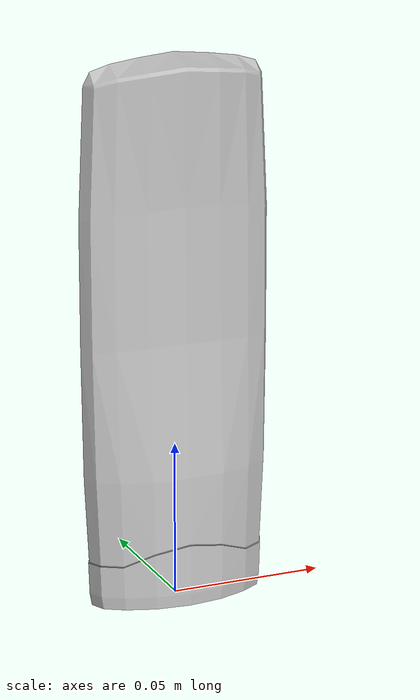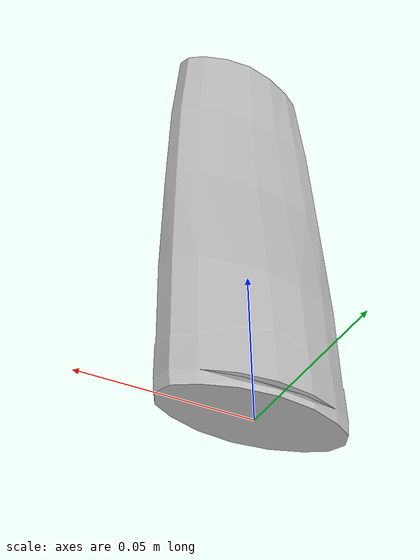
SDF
<?xml version='1.0'?>
<sdf version="1.4">
	<model name="bodywash">
		<static>1</static>
		<link name="link">
			<visual name="mesh">
				<geometry>
					<mesh>
						<uri>model://meshes/bodywash.dae</uri>
					</mesh>
				</geometry>
			</visual>
			<collision name="collider">
				<pose>0 0 0.09 0 0 0</pose>
				<geometry>
					<cylinder>
						<radius>0.03</radius>
						<length>0.18</length>
					</cylinder>
				</geometry>
			</collision>
		</link>
	</model>
</sdf>
